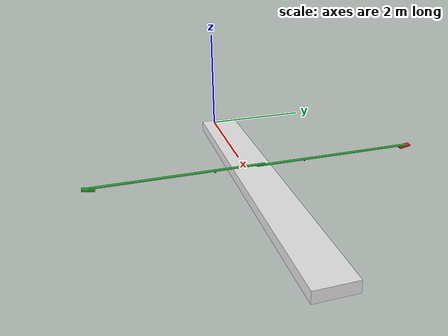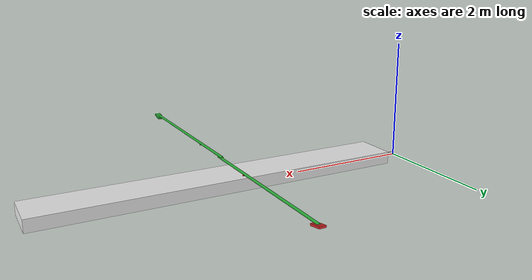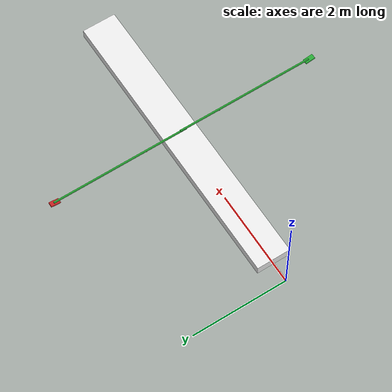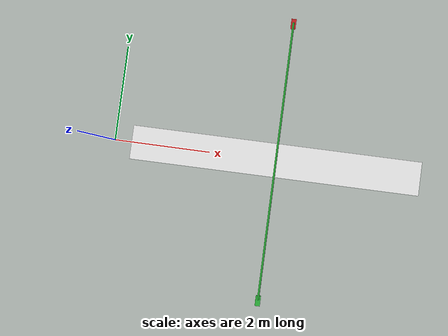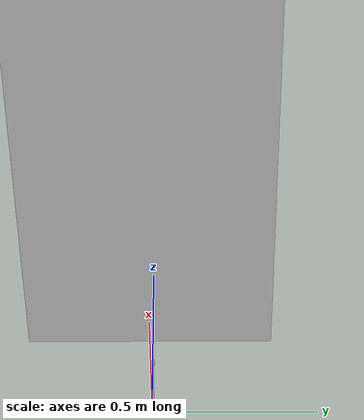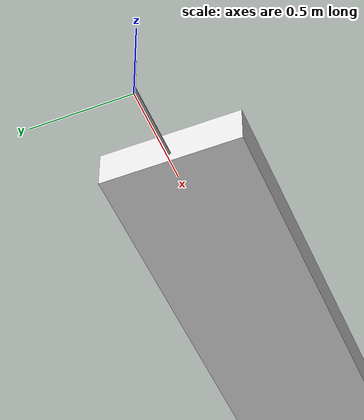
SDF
<sdf version='1.6'>
  <model name='myboat'>
    <link name='l1'>
      <pose frame=''>0 0 0.25 0 -0 0</pose>
      <inertial>
        <pose frame=''>0 0 -0.1 0 -0 0</pose>
        <mass>0.01</mass>
        <inertia>
          <ixx>0.006</ixx>
          <ixy>0</ixy>
          <ixz>0</ixz>
          <iyy>0.1</iyy>
          <iyz>0</iyz>
          <izz>0.1</izz>
        </inertia>
      </inertial>
      <visual name='l1_visual'>
        <pose frame=''>0 0 -0.1 0 -0 0</pose>
        <geometry>
          <box>
            <size>0.01 0.01 0.2</size>
          </box>
        </geometry>
      </visual>
    </link>
    <joint name='prism' type='prismatic'>
      <child>l1</child>
      <parent>world</parent>
      <axis>
        <xyz>1 0 0</xyz>
        <limit>
          <lower>-1000</lower>
          <upper>1000</upper>
          <effort>1000</effort>
          <velocity>0.5</velocity>
        </limit>
        <dynamics>
          <spring_reference>0</spring_reference>
          <spring_stiffness>0</spring_stiffness>
        </dynamics>
        <use_parent_model_frame>1</use_parent_model_frame>
      </axis>
    </joint>
    <link name='l2'>
      <pose frame=''>0 0 0.05 3.14159 1.57079 3.14159</pose>
      <inertial>
        <pose frame=''>0 0 0.2 0 -0 0</pose>
        <mass>0.01</mass>
        <inertia>
          <ixx>0.006</ixx>
          <ixy>0</ixy>
          <ixz>0</ixz>
          <iyy>0.1</iyy>
          <iyz>0</iyz>
          <izz>0.1</izz>
        </inertia>
      </inertial>
      <visual name='l2_visual'>
        <pose frame=''>0 0 0.2 0 -0 0</pose>
        <geometry>
          <box>
            <size>0.01 0.01 0.4</size>
          </box>
        </geometry>
      </visual>
    </link>
    <joint name='rev1' type='revolute'>
      <child>l2</child>
      <parent>l1</parent>
      <axis>
        <xyz>0 1 0</xyz>
        <limit>
          <lower>-1</lower>
          <upper>1</upper>
          <effort>1000</effort>
          <velocity>1</velocity>
        </limit>
        <dynamics>
          <spring_reference>0</spring_reference>
          <spring_stiffness>0</spring_stiffness>
        </dynamics>
        <use_parent_model_frame>1</use_parent_model_frame>
      </axis>
    </joint>
    <link name='skiff'>
      <pose frame=''>0.4 0 0.05 0 0 3.14159</pose>
      <inertial>
        <pose frame=''>-3 0 0.05 0 -0 0</pose>
        <mass>85</mass>
        <inertia>
          <ixx>3.2</ixx>
          <ixy>0</ixy>
          <ixz>0</ixz>
          <iyy>54.2</iyy>
          <iyz>0</iyz>
          <izz>57</izz>
        </inertia>
      </inertial>
      <collision name='skiff_collision'>
        <pose frame=''>-3 0 0.05 0 -0 0</pose>
        <geometry>
          <box>
            <size>6 0.7 0.2</size>
          </box>
        </geometry>
        <surface>
          <contact>
            <ode/>
          </contact>
          <friction>
            <ode>
              <mu>0.02</mu>
              <mu2>0.02</mu2>
            </ode>
          </friction>
        </surface>
      </collision>
      <visual name='skiff_visual'>
        <pose frame=''>-3 0 0.05 0 -0 0</pose>
        <geometry>
          <box>
            <size>6 0.7 0.2</size>
          </box>
        </geometry>
        <material>
          <script>
            <name>Gazebo/White</name>
            <uri>file://media/materials/scripts/gazebo.material</uri>
          </script>
        </material>
      </visual>
      <gravity>1</gravity>
      <velocity_decay/>
    </link>
    <joint name='rev2' type='revolute'>
      <child>skiff</child>
      <parent>l2</parent>
      <axis>
        <xyz>-0 -1 0</xyz>
        <limit>
          <lower>-1</lower>
          <upper>1</upper>
          <effort>1000</effort>
          <velocity>1</velocity>
        </limit>
        <dynamics>
          <spring_reference>0</spring_reference>
          <spring_stiffness>0</spring_stiffness>
        </dynamics>
        <use_parent_model_frame>1</use_parent_model_frame>
      </axis>
    </joint>
    <link name='port_rowlock_l'>
      <pose frame=''>3.4 0.8 0.45 0 0 3.14159</pose>
      <inertial>
        <pose frame=''>0 0 0 0 -0 0</pose>
        <mass>0.1</mass>
        <inertia>
          <ixx>1.7e-05</ixx>
          <ixy>0</ixy>
          <ixz>0</ixz>
          <iyy>1.7e-05</iyy>
          <iyz>0</iyz>
          <izz>7e-06</izz>
        </inertia>
      </inertial>
      <collision name='port_rowlock_l_collision'>
        <pose frame=''>0 0 0 0 -0 0</pose>
        <geometry>
          <box>
            <size>0.02 0.02 0.04</size>
          </box>
        </geometry>
        <surface>
          <contact>
            <ode/>
          </contact>
          <friction>
            <ode>
              <mu>0.01</mu>
              <mu2>0.01</mu2>
            </ode>
          </friction>
        </surface>
      </collision>
      <visual name='port_rowlock_l_visual'>
        <pose frame=''>0 0 0 0 -0 0</pose>
        <geometry>
          <box>
            <size>0.02 0.02 0.04</size>
          </box>
        </geometry>
        <material>
          <script>
            <name>Gazebo/Red</name>
            <uri>file://media/materials/scripts/gazebo.material</uri>
          </script>
        </material>
      </visual>
      <gravity>1</gravity>
      <velocity_decay/>
    </link>
    <joint name='port_rowlock' type='revolute'>
      <child>port_rowlock_l</child>
      <parent>skiff</parent>
      <axis>
        <xyz>-0 0 1</xyz>
        <limit>
          <lower>-1.4</lower>
          <upper>1.4</upper>
          <effort>1000</effort>
          <velocity>1</velocity>
        </limit>
        <dynamics>
          <spring_reference>0</spring_reference>
          <spring_stiffness>0</spring_stiffness>
        </dynamics>
        <use_parent_model_frame>1</use_parent_model_frame>
      </axis>
      <physics>
        <provide_feedback>1</provide_feedback>
        <ode>
          <provide_feedback>1</provide_feedback>
          <limit>
            <cfm>0</cfm>
            <erp>0.2</erp>
          </limit>
        </ode>
      </physics>
    </joint>
    <link name='port_oar_l'>
      <pose frame=''>3.4 0.8 0.47 1.57079 1.57079 3.14159</pose>
      <inertial>
        <pose frame=''>0 0 0.565 0 -0 0</pose>
        <mass>1</mass>
        <inertia>
          <ixx>0.6</ixx>
          <ixy>0</ixy>
          <ixz>0</ixz>
          <iyy>0.6</iyy>
          <iyz>0</iyz>
          <izz>0.001</izz>
        </inertia>
      </inertial>
      <collision name='port_oar_l_collision'>
        <pose frame=''>0 0 0.565 0 -0 0</pose>
        <geometry>
          <cylinder>
            <length>2.27</length>
            <radius>0.02</radius>
          </cylinder>
        </geometry>
        <surface>
          <contact>
            <ode/>
          </contact>
          <friction>
            <ode>
              <mu>0.01</mu>
              <mu2>0.01</mu2>
            </ode>
          </friction>
        </surface>
      </collision>
      <visual name='port_oar_l_visual'>
        <pose frame=''>0 0 0.565 0 -0 0</pose>
        <geometry>
          <cylinder>
            <length>2.87</length>
            <radius>0.02</radius>
          </cylinder>
        </geometry>
        <material>
          <script>
            <name>Gazebo/Green</name>
            <uri>file://media/materials/scripts/gazebo.material</uri>
          </script>
        </material>
      </visual>
      <gravity>1</gravity>
      <velocity_decay/>
    </link>
    <joint name='port_oar' type='revolute'>
      <child>port_oar_l</child>
      <parent>port_rowlock_l</parent>
      <axis>
        <xyz>-1 -0 -0</xyz>
        <limit>
          <lower>0</lower>
          <upper>0.4</upper>
          <effort>1000</effort>
          <velocity>1</velocity>
        </limit>
        <dynamics>
          <spring_reference>0</spring_reference>
          <spring_stiffness>0</spring_stiffness>
        </dynamics>
        <use_parent_model_frame>1</use_parent_model_frame>
      </axis>
      <physics>
        <provide_feedback>1</provide_feedback>
        <ode>
          <provide_feedback>1</provide_feedback>
          <limit>
            <cfm>0</cfm>
            <erp>0.2</erp>
          </limit>
        </ode>
      </physics>
    </joint>
    <link name='port_blade_l'>
      <pose frame=''>3.4 2.8 0.47 1.57079 1.57079 3.14159</pose>
      <inertial>
        <pose frame=''>0.02 0 -0.02 0 1.4 0</pose>
        <mass>1</mass>
        <inertia>
          <ixx>0.0009</ixx>
          <ixy>0</ixy>
          <ixz>0</ixz>
          <iyy>0.0034</iyy>
          <iyz>0</iyz>
          <izz>0.004</izz>
        </inertia>
      </inertial>
      <collision name='port_blade_l_collision'>
        <pose frame=''>0.02 0 -0.02 0 1.4 0</pose>
        <geometry>
          <box>
            <size>0.2 0.1 0.03</size>
          </box>
        </geometry>
        <surface>
          <contact>
            <ode/>
          </contact>
          <friction>
            <ode>
              <mu>10</mu>
              <mu2>10</mu2>
            </ode>
          </friction>
        </surface>
      </collision>
      <visual name='port_blade_l_visual'>
        <pose frame=''>0.02 0 -0.02 0 1.4 0</pose>
        <geometry>
          <box>
            <size>0.2 0.1 0.03</size>
          </box>
        </geometry>
        <material>
          <script>
            <name>Gazebo/Red</name>
            <uri>file://media/materials/scripts/gazebo.material</uri>
          </script>
        </material>
      </visual>
      <gravity>1</gravity>
      <velocity_decay/>
    </link>
    <joint name='port_blade' type='revolute'>
      <child>port_blade_l</child>
      <parent>port_oar_l</parent>
      <axis>
        <xyz>-1 -0 -0</xyz>
        <limit>
          <lower>-0.4</lower>
          <upper>0.4</upper>
          <effort>1000</effort>
          <velocity>1</velocity>
        </limit>
        <dynamics>
          <spring_reference>0</spring_reference>
          <spring_stiffness>0</spring_stiffness>
        </dynamics>
        <use_parent_model_frame>1</use_parent_model_frame>
      </axis>
      <physics>
        <provide_feedback>1</provide_feedback>
        <ode>
          <provide_feedback>1</provide_feedback>
          <limit>
            <cfm>0</cfm>
            <erp>0.2</erp>
          </limit>
        </ode>
      </physics>
    </joint>
    <link name='starboard_rowlock_l'>
      <pose frame=''>3.4 -0.8 0.47 0 0 3.14159</pose>
      <inertial>
        <pose frame=''>0 0 0 0 -0 0</pose>
        <mass>0.1</mass>
        <inertia>
          <ixx>1.7e-05</ixx>
          <ixy>0</ixy>
          <ixz>0</ixz>
          <iyy>1.7e-05</iyy>
          <iyz>0</iyz>
          <izz>7e-06</izz>
        </inertia>
      </inertial>
      <collision name='starboard_rowlock_l_collision'>
        <pose frame=''>0 0 0 0 -0 0</pose>
        <geometry>
          <box>
            <size>0.02 0.02 0.04</size>
          </box>
        </geometry>
        <surface>
          <contact>
            <ode/>
          </contact>
          <friction>
            <ode>
              <mu>0.01</mu>
              <mu2>0.01</mu2>
            </ode>
          </friction>
        </surface>
      </collision>
      <visual name='starboard_rowlock_l_visual'>
        <pose frame=''>0 0 0 0 -0 0</pose>
        <geometry>
          <box>
            <size>0.02 0.02 0.04</size>
          </box>
        </geometry>
        <material>
          <script>
            <name>Gazebo/Green</name>
            <uri>file://media/materials/scripts/gazebo.material</uri>
          </script>
        </material>
      </visual>
      <gravity>1</gravity>
      <velocity_decay/>
    </link>
    <joint name='starboard_rowlock' type='revolute'>
      <child>starboard_rowlock_l</child>
      <parent>skiff</parent>
      <axis>
        <xyz>-0 0 1</xyz>
        <limit>
          <lower>-1.4</lower>
          <upper>1.4</upper>
          <effort>1000</effort>
          <velocity>1</velocity>
        </limit>
        <dynamics>
          <spring_reference>0</spring_reference>
          <spring_stiffness>0</spring_stiffness>
        </dynamics>
        <use_parent_model_frame>1</use_parent_model_frame>
      </axis>
      <physics>
        <provide_feedback>1</provide_feedback>
        <ode>
          <provide_feedback>1</provide_feedback>
          <limit>
            <cfm>0</cfm>
            <erp>0.2</erp>
          </limit>
        </ode>
      </physics>
    </joint>
    <link name='starboard_oar_l'>
      <pose frame=''>3.4 -0.8 0.49 1.57079 1.57079 3.14159</pose>
      <inertial>
        <pose frame=''>0 0 -0.565 0 -0 0</pose>
        <mass>1</mass>
        <inertia>
          <ixx>0.6</ixx>
          <ixy>0</ixy>
          <ixz>0</ixz>
          <iyy>0.6</iyy>
          <iyz>0</iyz>
          <izz>0.001</izz>
        </inertia>
      </inertial>
      <collision name='starboard_oar_l_collision'>
        <pose frame=''>0 0 -0.565 0 -0 0</pose>
        <geometry>
          <cylinder>
            <length>2.27</length>
            <radius>0.02</radius>
          </cylinder>
        </geometry>
        <surface>
          <contact>
            <ode/>
          </contact>
          <friction>
            <ode>
              <mu>0.01</mu>
              <mu2>0.01</mu2>
            </ode>
          </friction>
        </surface>
      </collision>
      <visual name='starboard_oar_l_visual'>
        <pose frame=''>0 0 -0.565 0 -0 0</pose>
        <geometry>
          <cylinder>
            <length>2.87</length>
            <radius>0.02</radius>
          </cylinder>
        </geometry>
        <material>
          <script>
            <name>Gazebo/Green</name>
            <uri>file://media/materials/scripts/gazebo.material</uri>
          </script>
        </material>
      </visual>
      <gravity>1</gravity>
      <velocity_decay/>
    </link>
    <joint name='starboard_oar' type='revolute'>
      <child>starboard_oar_l</child>
      <parent>starboard_rowlock_l</parent>
      <axis>
        <xyz>-1 -0 -0</xyz>
        <limit>
          <lower>-0.4</lower>
          <upper>0</upper>
          <effort>1000</effort>
          <velocity>1</velocity>
        </limit>
        <dynamics>
          <spring_reference>0</spring_reference>
          <spring_stiffness>0</spring_stiffness>
        </dynamics>
        <use_parent_model_frame>1</use_parent_model_frame>
      </axis>
      <physics>
        <provide_feedback>1</provide_feedback>
        <ode>
          <provide_feedback>1</provide_feedback>
          <limit>
            <cfm>0</cfm>
            <erp>0.2</erp>
          </limit>
        </ode>
      </physics>
    </joint>
    <link name='starboard_blade_l'>
      <pose frame=''>3.4 -2.8 0.49 1.57079 1.57079 3.14159</pose>
      <inertial>
        <pose frame=''>0.02 0 -0.02 0 -1.4 0</pose>
        <mass>1</mass>
        <inertia>
          <ixx>0.0009</ixx>
          <ixy>0</ixy>
          <ixz>0</ixz>
          <iyy>0.0034</iyy>
          <iyz>0</iyz>
          <izz>0.004</izz>
        </inertia>
      </inertial>
      <collision name='starboard_blade_l_collision'>
        <pose frame=''>0.02 0 -0.02 0 -1.4 0</pose>
        <geometry>
          <box>
            <size>0.2 0.1 0.03</size>
          </box>
        </geometry>
        <surface>
          <contact>
            <ode/>
          </contact>
          <friction>
            <ode>
              <mu>10</mu>
              <mu2>10</mu2>
            </ode>
          </friction>
        </surface>
      </collision>
      <visual name='starboard_blade_l_visual'>
        <pose frame=''>0.02 0 -0.02 0 -1.4 0</pose>
        <geometry>
          <box>
            <size>0.2 0.1 0.03</size>
          </box>
        </geometry>
        <material>
          <script>
            <name>Gazebo/Green</name>
            <uri>file://media/materials/scripts/gazebo.material</uri>
          </script>
        </material>
      </visual>
      <gravity>1</gravity>
      <velocity_decay/>
    </link>
    <joint name='starboard_blade' type='revolute'>
      <child>starboard_blade_l</child>
      <parent>starboard_oar_l</parent>
      <axis>
        <xyz>-1 -0 -0</xyz>
        <limit>
          <lower>-0.4</lower>
          <upper>0.4</upper>
          <effort>1000</effort>
          <velocity>1</velocity>
        </limit>
        <dynamics>
          <spring_reference>0</spring_reference>
          <spring_stiffness>0</spring_stiffness>
        </dynamics>
        <use_parent_model_frame>1</use_parent_model_frame>
      </axis>
      <physics>
        <provide_feedback>1</provide_feedback>
        <ode>
          <provide_feedback>1</provide_feedback>
          <limit>
            <cfm>0</cfm>
            <erp>0.2</erp>
          </limit>
        </ode>
      </physics>
    </joint>
    <self_collide>1</self_collide>
    <static>0</static>
    <plugin name='gazebo_ros_control' filename='libgazebo_ros_control.so'>
      <robotNamespace>/boot2</robotNamespace>
      <robotSimType>gazebo_ros_control/DefaultRobotHWSim</robotSimType>
    </plugin>
    <plugin name='sb_rl_sensor' filename='libgazebo_ros_ft_sensor.so'>
      <updateRate>50.0</updateRate>
      <topicName>sb_rl_sensor</topicName>
      <jointName>starboard_rowlock</jointName>
    </plugin>
    <plugin name='p_rl_sensor' filename='libgazebo_ros_ft_sensor.so'>
      <updateRate>50.0</updateRate>
      <topicName>p_rl_sensor</topicName>
      <jointName>port_rowlock</jointName>
    </plugin>
    <plugin name='sb_oar_sensor' filename='libgazebo_ros_ft_sensor.so'>
      <updateRate>50.0</updateRate>
      <topicName>sb_oar_sensor</topicName>
      <jointName>starboard_oar</jointName>
    </plugin>
    <plugin name='p_oar_sensor' filename='libgazebo_ros_ft_sensor.so'>
      <updateRate>50.0</updateRate>
      <topicName>p_oar_sensor</topicName>
      <jointName>port_oar</jointName>
      <noise>
        <type>gaussian</type>
        <mean>0.0</mean>
        <stddev>0.003</stddev>
      </noise>
    </plugin>
    <plugin name='sbb_sensor' filename='libgazebo_ros_ft_sensor.so'>
      <updateRate>50.0</updateRate>
      <topicName>sbb_sensor</topicName>
      <jointName>starboard_blade</jointName>
    </plugin>
    <plugin name='pb_sensor' filename='libgazebo_ros_ft_sensor.so'>
      <updateRate>50.0</updateRate>
      <topicName>pb_sensor</topicName>
      <jointName>port_blade</jointName>
    </plugin>
  </model>
</sdf>
